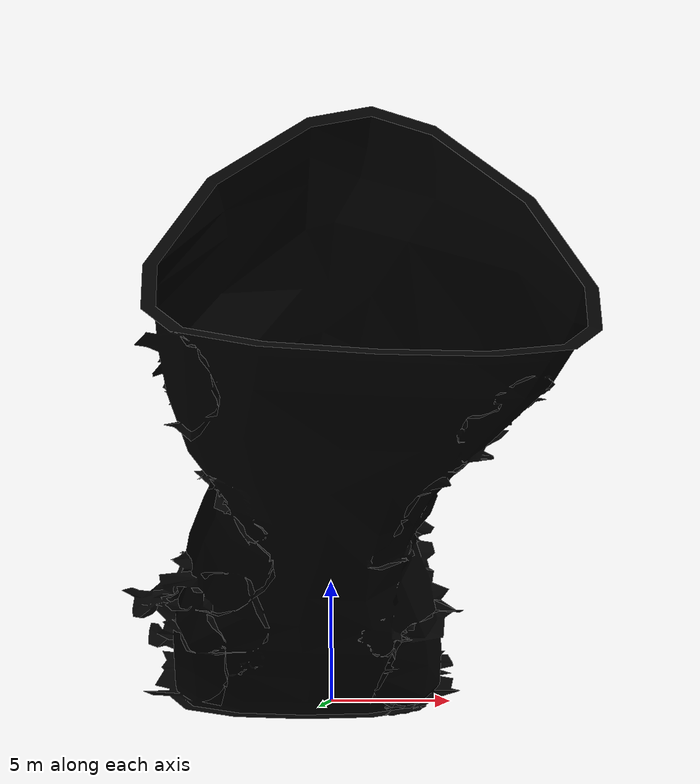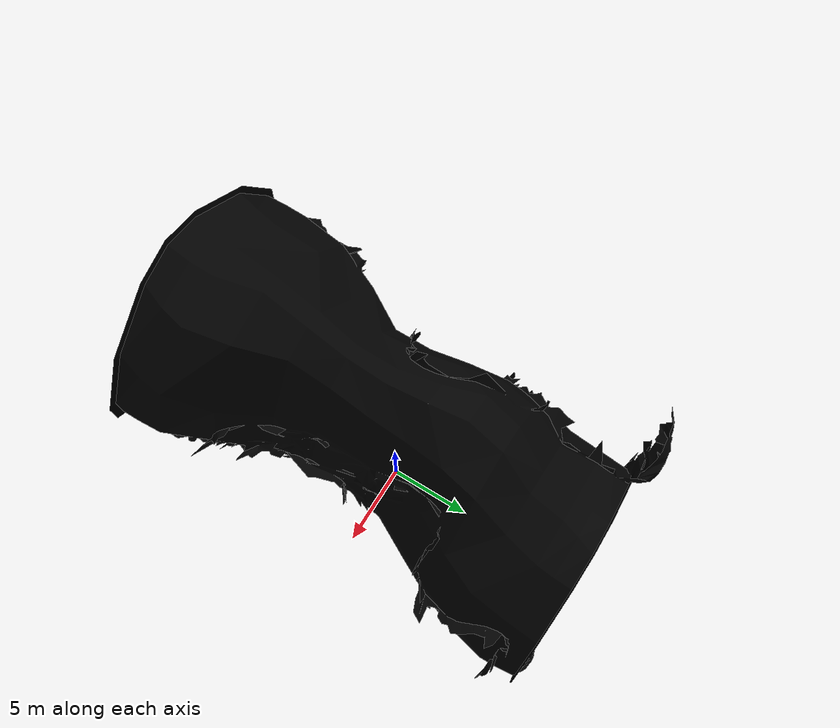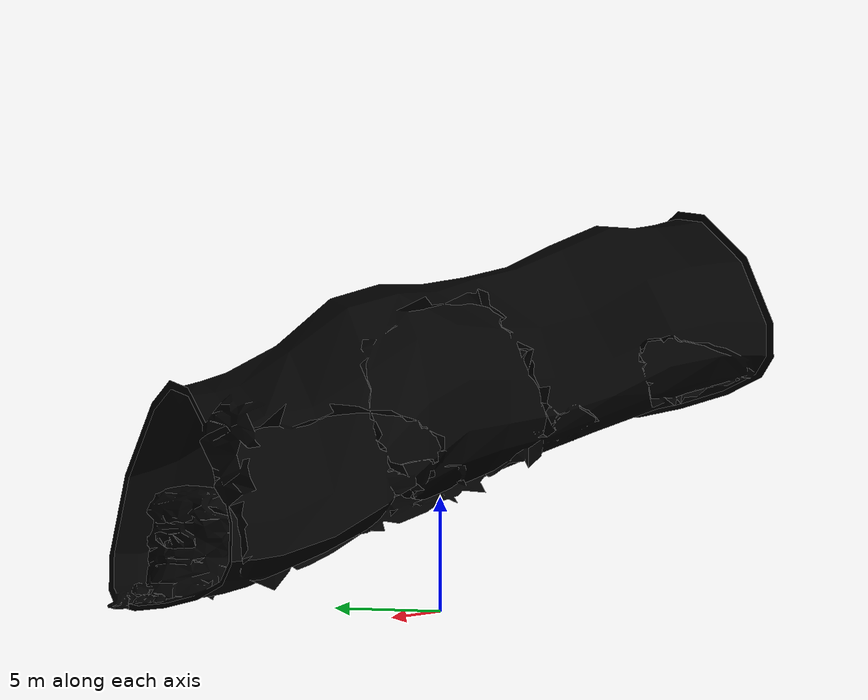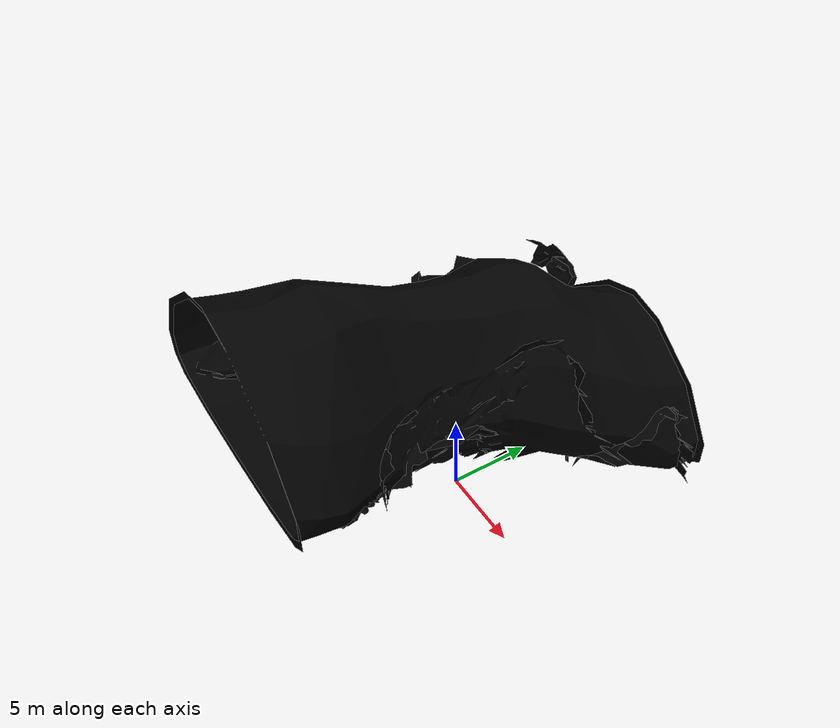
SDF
<sdf version="1.6">
  <model name="Cave Elevation Lights Type B">
    <static>true</static>
    <include>
      <name>cave_elevation</name>
      <uri>model://Cave Elevation Type B</uri>
    </include>

    <link name="light1">
      <light name="spot_light1" type="spot">
        <pose>0 -8 17.5 0 0 0</pose>
        <diffuse>0 0 0 1</diffuse>
        <specular>0 0 0 1</specular>
        <attenuation>
          <range>20</range>
          <linear>0.2</linear>
          <constant>1.0</constant>
          <quadratic>0.01</quadratic>
        </attenuation>
        <spot>
          <inner_angle>2.0</inner_angle>
          <outer_angle>3.1</outer_angle>
          <falloff>1.2</falloff>
        </spot>
        <cast_shadows>false</cast_shadows>
      </light>

      <light name="spot_light2" type="spot">
        <pose>0 2 13.5 0 0 0</pose>
        <diffuse>0 0 0 1</diffuse>
        <specular>0 0 0 1</specular>
        <attenuation>
          <range>20</range>
          <linear>0.2</linear>
          <constant>1.0</constant>
          <quadratic>0.01</quadratic>
        </attenuation>
        <spot>
          <inner_angle>2.0</inner_angle>
          <outer_angle>3.1</outer_angle>
          <falloff>1.2</falloff>
        </spot>
        <cast_shadows>false</cast_shadows>
      </light>

      <light name="spot_light3" type="spot">
        <pose>0 12 9 0 0 0</pose>
        <diffuse>0 0 0 1</diffuse>
        <specular>0 0 0 1</specular>
        <attenuation>
          <range>20</range>
          <linear>0.2</linear>
          <constant>1.0</constant>
          <quadratic>0.01</quadratic>
        </attenuation>
        <spot>
          <inner_angle>2.0</inner_angle>
          <outer_angle>3.1</outer_angle>
          <falloff>1.2</falloff>
        </spot>
        <cast_shadows>false</cast_shadows>
      </light>
    </link>
  </model>
</sdf>

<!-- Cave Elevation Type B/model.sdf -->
<sdf version="1.6">
  <model name="Cave Elevation Type B">
    <static>true</static>
    <link name="base_link">
      <collision name="collision">
        <pose>0 0 0 0 0 0</pose>
        <geometry>
          <mesh>
            <uri>model://Cave Elevation Type B/meshes/caveelevation.dae</uri>
            <scale>1.0 1.0 1.0</scale>
          </mesh>
        </geometry>
      </collision>
      <visual name="CaveWall_visual">
        <geometry>
          <mesh>
            <uri>model://Cave Elevation Type B/meshes/caveelevation.dae</uri>
            <submesh>
              <name>CaveWall</name>
              <center>false</center>
            </submesh>
          </mesh>
        </geometry>
        <material>
          <diffuse>0 0 0 1</diffuse>
          <specular>0 0 0 1</specular>
          <pbr>
            <metal>
              <albedo_map>model://Cave Elevation Type B/materials/textures/CaveWall_Albedo.png</albedo_map>
              <normal_map>model://Cave Elevation Type B/materials/textures/CaveWall_Normal.png</normal_map>
              <roughness_map>model://Cave Elevation Type B/materials/textures/CaveWall_Roughness.png</roughness_map>
            </metal>
          </pbr>

          <script>
            <uri>model://Cave Elevation Type B/materials/scripts/</uri>
            <uri>model://Cave Elevation Type B/materials/textures/</uri>
            <name>CaveTile/CaveWall_Diffuse</name>
          </script>
        </material>
      </visual>
      <visual name="RockPile_visual">
        <geometry>
          <mesh>
            <uri>model://Cave Elevation Type B/meshes/caveelevation.dae</uri>
            <submesh>
              <name>RockPile</name>
              <center>false</center>
            </submesh>
          </mesh>
        </geometry>
        <material>
          <diffuse>0 0 0 1</diffuse>
          <specular>0 0 0 1</specular>
          <pbr>
            <metal>
              <albedo_map>model://Cave Elevation Type B/materials/textures/RockPile_Albedo.png</albedo_map>
              <normal_map>model://Cave Elevation Type B/materials/textures/RockPile_Normal.png</normal_map>
              <roughness_map>model://Cave Elevation Type B/materials/textures/RockPile_Roughness.png</roughness_map>
            </metal>
          </pbr>

          <script>
            <uri>model://Cave Elevation Type B/materials/scripts/</uri>
            <uri>model://Cave Elevation Type B/materials/textures/</uri>
            <name>CaveTile/RockPile_Diffuse</name>
          </script>
        </material>
      </visual>
      <visual name="StriatedRock_visual">
        <geometry>
          <mesh>
            <uri>model://Cave Elevation Type B/meshes/caveelevation.dae</uri>
            <submesh>
              <name>StriatedRock</name>
              <center>false</center>
            </submesh>
          </mesh>
        </geometry>
        <material>
          <diffuse>0 0 0 1</diffuse>
          <specular>0 0 0 1</specular>
          <pbr>
            <metal>
              <albedo_map>model://Cave Elevation Type B/materials/textures/StriatedRock_Albedo.png</albedo_map>
              <normal_map>model://Cave Elevation Type B/materials/textures/StriatedRock_Normal.png</normal_map>
              <roughness_map>model://Cave Elevation Type B/materials/textures/StriatedRock_Roughness.png</roughness_map>
            </metal>
          </pbr>

          <script>
            <uri>model://Cave Elevation Type B/materials/scripts/</uri>
            <uri>model://Cave Elevation Type B/materials/textures/</uri>
            <name>CaveTile/StriatedRock_Diffuse</name>
          </script>
        </material>
      </visual>
    </link>

    <plugin filename="libignition-gazebo-performer-detector-system.so" name="ignition::gazebo::systems::PerformerDetector">
      <topic>/subt_performer_detector</topic>
      <pose>0 0 10 0 0 0</pose>
      <geometry>
        <box>
          <size>20 30 20</size>
        </box>
      </geometry>
      <header_data>
        <key>type</key>
        <value>elevation</value>
      </header_data>
    </plugin>
  </model>
</sdf>
